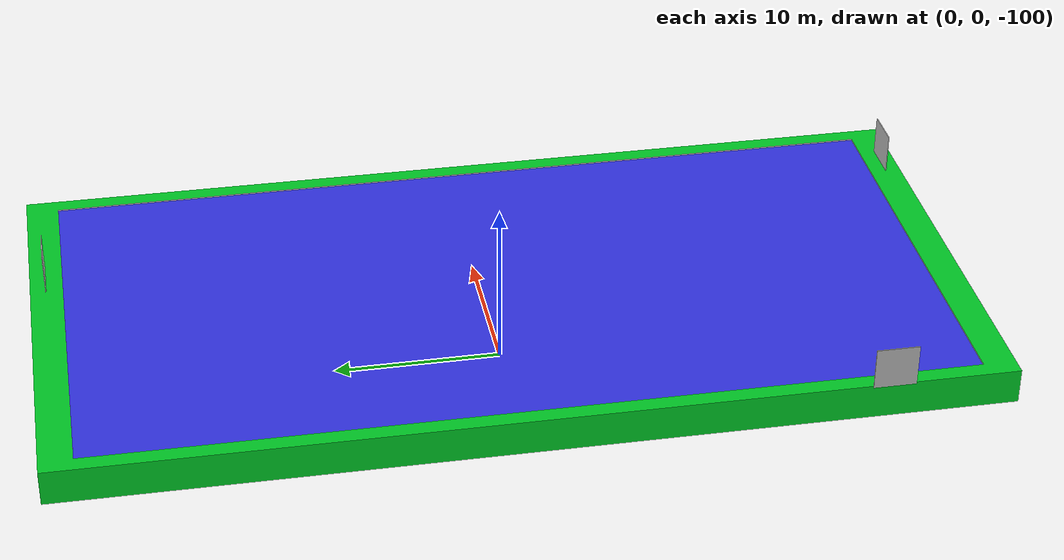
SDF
<?xml version="1.0" ?>
<sdf version="1.5">
  <world name="default">
    <!-- Origin placed somewhere in the middle of the North Sea  -->

    <!-- Global light source -->
    <include>
      <uri>model://sun</uri>
    </include>

    <model name="water">
      <static>true</static>
      <pose>0 0 -95.98 3.1415 0 3.1415</pose>
      <link name="link">
        <visual name="visual">
          <transparency>0.1</transparency>
          <cast_shadows>false</cast_shadows>
          <geometry>
            <box>
              <size>26 51 2</size>
            </box>
          </geometry>
          <material>
            <ambient>0.2 0.2 0.9 1</ambient>
            <diffuse>0.2 0.2 0.9 1</diffuse>
            <specular>0.1 0.1 0.3 1</specular>
            <emissive>0 0 0 1</emissive>
          </material>
        </visual>
        <collision name="collision">
          <geometry>
            <box>
              <size>26 51 2</size>
            </box>
          </geometry>
        </collision>
      </link>
    </model>

    <model name="pool">
      <pose>0 0 -97 0 0 0</pose>
      <static>true</static>
      <link name="ground">
        <visual name="visual">
          <geometry>
            <mesh>
              <uri>model://pool/pool2.dae</uri>
              <scale>1 1 1</scale>
            </mesh>
          </geometry>
        </visual>
        <collision name="collision">
          <geometry>
              <mesh>
                <uri>model://pool/pool2.dae</uri>
                <scale>1 1 1</scale>
              </mesh>
          </geometry>
        </collision>
      </link>
    </model>

    <!-- Include the AprilTag in the swimming pool (bottom) -->
    <include>
      <uri>model://ar_tag</uri>
      <name>ar_tag1</name>
      <pose>10 20 -97 0 1.5708 0</pose>
    </include>

    <include>
      <uri>model://ar_tag</uri>
      <pose>10 -20 -97 0 1.5708 0</pose>
      <name>ar_tag2</name>
    </include>

    <include>
      <uri>model://ar_tag</uri>
      <pose>5 -20 -97 0 1.5708 0</pose>
      <name>ar_tag3</name>
    </include>

    <include>
      <uri>model://ar_tag</uri>
      <pose>5 20 -97 0 1.5708 0</pose>
      <name>ar_tag4</name>
    </include>

    <include>
      <uri>model://ar_tag</uri>
      <pose>0 20 -97 0 1.5708 0</pose>
      <name>ar_tag5</name>
    </include>

    <include>
      <uri>model://ar_tag</uri>
      <pose>0 -20 -97 0 1.5708 0</pose>
      <name>ar_tag6</name>
    </include>

    <include>
      <uri>model://ar_tag</uri>
      <pose>-5 -20 -97 0 1.5708 0</pose>
      <name>ar_tag7</name>
    </include>

    <include>
      <uri>model://ar_tag</uri>
      <pose>-5 20 -97 0 1.5708 0</pose>
      <name>ar_tag8</name>
    </include>

    <!-- Include the AprilTag in the swimming pool (side) -->
    <include>
      <uri>model://ar_tag</uri>
      <pose>10 -26.5 -95 0 0 1.5708</pose>
      <name>ar_tag9</name>
    </include>

    <include>
      <uri>model://ar_tag</uri>
      <pose>5 26.5 -95 0 0 1.5708</pose>
      <name>ar_tag10</name>
    </include>

    <include>
      <uri>model://ar_tag</uri>
      <pose>-14 -20 -95 0 0 0</pose>
      <name>ar_tag11</name>
    </include>

    <!-- Not work (cannot find parent link bluerov2/base_link) -->

  </world>
</sdf>

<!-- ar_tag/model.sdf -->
<sdf version="1.6">
  <model name="Marker0">
    <static>true</static>
    <link name="link">
      <visual name="visual">
        <geometry>
          <mesh>
            <uri>model://ar_tag/meshes/Marker1.dae</uri>
            <scale>5 5 5</scale> // Scale the ar_tag ******
          </mesh>
        </geometry>
      </visual>
    </link>
  </model>
</sdf>
